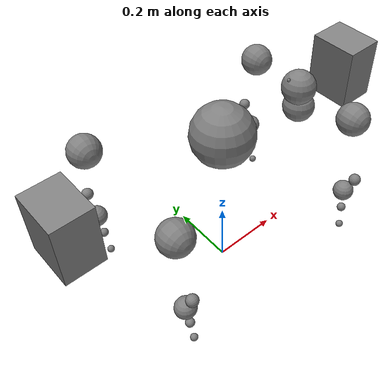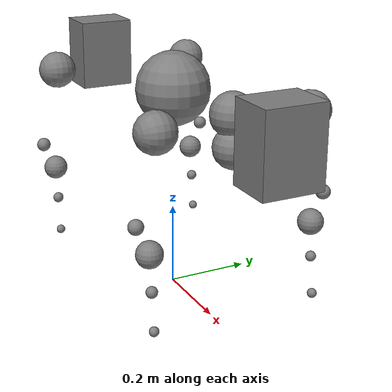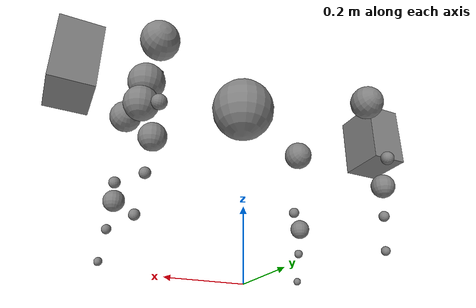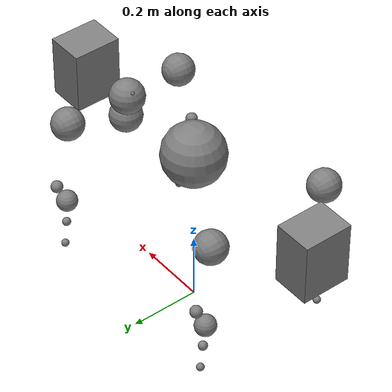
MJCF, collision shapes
<?xml version="1.0" encoding="utf-8"?>
<mujoco model="anymal">
  <compiler angle="radian" meshdir="assets" autolimits="true"/>

  <option cone="pyramidal" impratio="100" iterations="1" ls_iterations="5">
    <flag eulerdamp="disable"/>
  </option>

  <default>
    <default class="anymal">
      <geom friction="0.8" margin="0.001" condim="1"/>
      <joint axis="0 1 0" damping="2" armature="0.01"/>
      <general forcerange="-80 80" biastype="affine" gainprm="50 0 0" biasprm="0 -50 -0.5"/>

      <default class="haa">
        <joint axis="1 0 0"/>
      </default>

      <default class="hfe">
        <joint axis="1 0 0" range="-9.42477796077 9.42477796077"/>
        <general ctrlrange="-9.32477796077 9.32477796077"/>
      </default>

      <default class="kfe">
        <joint axis="1 0 0" range="-9.42477796077 9.42477796077"/>
        <general ctrlrange="-9.32477796077 9.32477796077"/>
      </default>

      <default class="visual">
        <geom type="mesh" contype="0" conaffinity="0" group="2"/>
      </default>

      <default class="anymal_foot">
        <site group="1" pos="0 0 0.0225"/>
        <geom rgba="0.2 0.2 0.2 1"/>
      </default>

      <default class="collision">
        <geom group="3"/>
        <default class="foot">
          <geom size="0.03" pos="0 0 0.0225" priority="1" solimp="0.015 1 0.031" condim="6"
            friction="0.8 0.02 0.01"/>
        </default>
      </default>
    </default>
  </default>

  <asset>
    <material name="metal" rgba="0.7 0.7 0.75 1"/>
    <material name="black" rgba="0.1 0.1 0.1 1"/>
    <material name="gray" rgba="0.5 0.5 0.5 1"/>
    <material name="dark_gray" rgba="0.3 0.3 0.3 1"/>
    <material name="orange" rgba="1 0.5 0 1"/>

    <!-- Mesh files -->
    <mesh file="base.dae"/>
    <mesh file="top_shell.dae"/>
    <mesh file="bottom_shell.dae"/>
    <mesh file="remote.dae"/>
    <mesh file="handle.dae"/>
    <mesh file="face.dae"/>
    <mesh file="battery.dae"/>
    <mesh file="drive.dae"/>
    <mesh file="hip_l.dae"/>
    <mesh file="hip_r.dae"/>
    <mesh file="thigh.dae"/>
    <mesh file="shank_l.dae"/>
    <mesh file="shank_r.dae"/>
    <mesh file="foot.dae"/>
    <mesh file="depth_camera.dae"/>
    <mesh file="wide_angle_camera.dae"/>
    <mesh file="lidar_cage.dae"/>
    <mesh file="lidar.dae"/>
  </asset>

  <worldbody>
    <body name="base" pos="0 0 0.5" childclass="anymal">
      <camera name="track" pos="1.2 -2.0 1.0" xyaxes="0.866 0.500 0.000 -0.171 0.296 0.940" mode="trackcom"/>

      <!-- Combined base inertia -->
      <inertial pos="-0.018 -0.002 0.024" mass="6.222"
                diaginertia="0.372497653 0.370887745 0.017938806"/>

      <freejoint/>

      <!-- Base visual -->
      <geom mesh="base" material="gray" class="visual"/>
      <geom mesh="top_shell" material="gray" class="visual"/>
      <geom mesh="bottom_shell" material="gray" class="visual"/>
      <geom mesh="remote" material="black" class="visual"/>
      <geom mesh="handle" material="metal" class="visual"/>
      <geom mesh="battery" material="black" class="visual"/>

      <!-- Base collision - simplified -->
      <geom size="0.09 0.07 0.09" class="collision"/>
      <geom size="0.05 0.045" pos="0.285 0 0.01" class="collision"/>
      <geom size="0.047" pos="0.293 0 -0.06" class="collision"/>

      <!-- IMU sensor location -->
      <site name="imu" pos="0.2488 0.00835 0.04628" quat="0.707107 0 0 0.707107"/>

      <!-- Front faces -->
      <body name="face_front" pos="0.4145 0 0">
        <inertial pos="0.042 -0.001 0.004" mass="0.73"
                  diaginertia="0.005238611 0.004325938 0.002643098"/>
        <geom mesh="face" material="gray" class="visual"/>
        <geom size="0.055 0.07 0.09" type="box" pos="0.055 0 0" class="collision"/>
      </body>

      <body name="face_rear" pos="-0.4145 0 0" quat="0 0 1 0">
        <inertial pos="0.042 -0.001 0.004" mass="0.73"
                  diaginertia="0.005238611 0.004325938 0.002643098"/>
        <geom mesh="face" material="gray" class="visual"/>
        <geom size="0.055 0.07 0.09" type="box" pos="0.055 0 0" class="collision"/>
      </body>

      <!-- LF Leg (Left Front) -->
      <body name="LF_hip" pos="0.2999 0.104 0">
        <inertial pos="-0.063 0.00007 0.00046" mass="2.04"
                  diaginertia="0.001805509 0.001765827 0.001053013"/>
        <joint name="LF_hip_joint" class="haa" range="-0.72 0.49"/>
        <geom mesh="drive" material="metal" class="visual" euler="0 0 2.61799387799"/>
        <geom size="0.046 0.02" pos="0 0.08 0" quat="1 1 0 0" class="collision"/>

        <body name="LF_thigh" pos="0 0.0955 0">
          <inertial pos="0.0 0.018 -0.169" mass="1.03"
                    diaginertia="0.019312599 0.018644469 0.002838361"/>
          <joint name="LF_thigh_joint" class="hfe"/>
          <geom mesh="hip_l" material="gray" class="visual"/>
          <geom mesh="thigh" material="gray" class="visual"/>
          <geom size="0.017 0.01225 0.017" pos="0 0.03 -0.1955" quat="0.707107 0 0.707107 0" class="collision"/>

          <body name="LF_calf" pos="0 0 -0.285">
            <inertial pos="0.03463 0.00688 0.00098" mass="0.33742"
                      diaginertia="0.00110974122 0.00089388521 0.00032748005"/>
            <joint name="LF_calf_joint" class="kfe"/>
            <geom mesh="drive" material="metal" class="visual" euler="0 0 1.57079632679"/>
            <geom mesh="shank_l" material="gray" class="visual"/>
            <geom size="0.012 0.06" pos="0.008 0 -0.06" quat="0.994493 0 -0.104807 0" class="collision"/>
            <geom size="0.011 0.0325" pos="0.02 0 -0.148" quat="0.999688 0 0.0249974 0" class="collision"/>
            <geom pos="0 0 -0.213" mesh="foot" class="visual" material="black" euler="0 0 -0.785398163397"/>
            <geom name="LF" class="foot"/>
            <site name="LF_foot" class="anymal_foot"/>
          </body>
        </body>
      </body>

      <!-- RF Leg (Right Front) -->
      <body name="RF_hip" pos="0.2999 -0.104 0">
        <inertial pos="-0.063 0.00007 0.00046" mass="2.04"
                  diaginertia="0.001805509 0.001765827 0.001053013"/>
        <joint name="RF_hip_joint" class="haa" range="-0.49 0.72"/>
        <geom mesh="drive" material="metal" class="visual" euler="0 0 -2.61799387799"/>
        <geom size="0.046 0.02" pos="0 -0.08 0" quat="0.707107 0.707107 0 0" class="collision"/>

        <body name="FR_thigh" pos="0 -0.0955 0">
          <inertial pos="0.0 -0.018 -0.169" mass="1.03"
                    diaginertia="0.019312599 0.018644469 0.002838361"/>
          <joint name="FR_thigh_joint" class="hfe"/>
          <geom mesh="hip_r" material="gray" class="visual"/>
          <geom mesh="thigh" material="gray" class="visual" quat="0 0 0 1"/>
          <geom size="0.017 0.01225 0.017" pos="0 -0.03 -0.1955" quat="0.707107 0 0.707107 0" class="collision"/>

          <body name="FR_calf" pos="0 0 -0.285">
            <inertial pos="0.03463 -0.00688 0.00098" mass="0.33742"
                      diaginertia="0.00110974122 0.00089388521 0.00032748005"/>
            <joint name="FR_calf_joint" class="kfe"/>
            <geom mesh="drive" material="metal" class="visual" euler="0 0 -1.57079632679"/>
            <geom mesh="shank_r" material="gray" class="visual"/>
            <geom size="0.013 0.06" pos="0.01 0 -0.06" quat="0.995004 0 -0.0998334 0" class="collision"/>
            <geom size="0.011 0.0325" pos="0.02 0 -0.148" quat="0.999688 0 0.0249974 0" class="collision"/>
            <geom pos="0 0 -0.213" mesh="foot" class="visual" material="black" euler="0 0 0.785398163397"/>
            <geom name="FR" class="foot"/>
            <site name="FR_foot" class="anymal_foot"/>
          </body>
        </body>
      </body>

      <!-- LH Leg (Left Hind) -->
      <body name="LH_hip" pos="-0.2999 0.104 0">
        <inertial pos="-0.063 0.00007 0.00046" mass="2.04"
                  diaginertia="0.001805509 0.001765827 0.001053013"/>
        <joint name="LH_hip_joint" class="haa" range="-0.72 0.49"/>
        <geom mesh="drive" material="metal" class="visual" euler="0 0 -2.61799387799"/>
        <geom size="0.046 0.02" pos="0 0.08 0" quat="0.707107 0.707107 0 0" class="collision"/>

        <body name="RL_thigh" pos="0 0.0955 0">
          <inertial pos="-0.0 0.018 -0.169" mass="1.03"
                    diaginertia="0.019312599 0.018644469 0.002838361"/>
          <joint name="RL_thigh_joint" class="hfe"/>
          <geom mesh="hip_r" material="gray" class="visual" quat="0 0 0 1"/>
          <geom mesh="thigh" material="gray" class="visual"/>
          <geom size="0.017 0.01225 0.017" pos="0 0.03 -0.1955" quat="0.707107 0 0.707107 0" class="collision"/>

          <body name="RL_calf" pos="0 0 -0.285">
            <inertial pos="-0.03463 0.00688 0.00098" mass="0.33742"
                      diaginertia="0.00110974122 0.00089388521 0.00032748005"/>
            <joint name="RL_calf_joint" class="kfe"/>
            <geom mesh="drive" material="metal" class="visual" euler="0 0 1.57079632679"/>
            <geom mesh="shank_r" material="gray" class="visual" quat="0 0 0 1"/>
            <geom size="0.013 0.06" pos="0.01 0 -0.06" quat="0.995004 0 -0.0998334 0" class="collision"/>
            <geom size="0.011 0.0325" pos="0.02 0 -0.148" quat="0.999688 0 0.0249974 0" class="collision"/>
            <geom pos="0 0 -0.213" mesh="foot" class="visual" material="black" euler="0 0 -2.35619449019"/>
            <geom name="RL" class="foot"/>
            <site name="RL_foot" class="anymal_foot"/>
          </body>
        </body>
      </body>

      <!-- RH Leg (Right Hind) -->
      <body name="RH_hip" pos="-0.2999 -0.104 0">
        <inertial pos="-0.063 0.00007 0.00046" mass="2.04"
                  diaginertia="0.001805509 0.001765827 0.001053013"/>
        <joint name="RH_hip_joint" class="haa" range="-0.49 0.72"/>
        <geom mesh="drive" material="metal" class="visual" euler="0 0 2.61799387799"/>
        <geom size="0.046 0.02" pos="0 -0.08 0" quat="0.707107 0.707107 0 0" class="collision"/>

        <body name="RR_thigh" pos="0 -0.0955 0">
          <inertial pos="-0.0 -0.018 -0.169" mass="1.03"
                    diaginertia="0.019312599 0.018644469 0.002838361"/>
          <joint name="RR_thigh_joint" class="hfe"/>
          <geom mesh="hip_l" material="gray" class="visual" quat="0 0 0 1"/>
          <geom mesh="thigh" material="gray" class="visual" quat="0 0 0 1"/>
          <geom size="0.017 0.01225 0.017" pos="0 -0.03 -0.1955" quat="0.707107 0 0.707107 0" class="collision"/>

          <body name="RR_calf" pos="0 0 -0.285">
            <inertial pos="-0.03463 -0.00688 0.00098" mass="0.33742"
                      diaginertia="0.00110974122 0.00089388521 0.00032748005"/>
            <joint name="RR_calf_joint" class="kfe"/>
            <geom mesh="drive" material="metal" class="visual" euler="0 0 -1.57079632679"/>
            <geom mesh="shank_l" material="gray" class="visual" quat="0 0 0 1"/>
            <geom size="0.013 0.06" pos="0.01 0 -0.06" quat="0.995004 0 -0.0998334 0" class="collision"/>
            <geom size="0.011 0.0325" pos="0.02 0 -0.148" quat="0.999688 0 0.0249974 0" class="collision"/>
            <geom pos="0 0 -0.213" mesh="foot" class="visual" material="black" euler="0 0 -3.92699081699"/>
            <geom name="RR" class="foot"/>
            <site name="RR_foot" class="anymal_foot"/>
          </body>
        </body>
      </body>

    </body>
  </worldbody>

  <actuator>
    <!-- LF leg actuators -->
    <general class="haa" name="LF_hip" joint="LF_hip_joint" ctrlrange="-0.62 0.39"/>
    <general class="hfe" name="LF_thigh" joint="LF_thigh_joint"/>
    <general class="kfe" name="LF_calf" joint="LF_calf_joint"/>

    <!-- RF leg actuators -->
    <general class="haa" name="RF_hip" joint="RF_hip_joint" ctrlrange="-0.39 0.62"/>
    <general class="hfe" name="FR_thigh" joint="FR_thigh_joint"/>
    <general class="kfe" name="FR_calf" joint="FR_calf_joint"/>

    <!-- LH leg actuators -->
    <general class="haa" name="LH_hip" joint="LH_hip_joint" ctrlrange="-0.62 0.39"/>
    <general class="hfe" name="RL_thigh" joint="RL_thigh_joint"/>
    <general class="kfe" name="RL_calf" joint="RL_calf_joint"/>

    <!-- RH leg actuators -->
    <general class="haa" name="RH_hip" joint="RH_hip_joint" ctrlrange="-0.39 0.62"/>
    <general class="hfe" name="RR_thigh" joint="RR_thigh_joint"/>
    <general class="kfe" name="RR_calf" joint="RR_calf_joint"/>
  </actuator>

  <sensor>
    <jointpos joint="LF_hip_joint" name="abduction_front_left_pos"/>
    <jointpos joint="LF_thigh_joint" name="hip_front_left_pos"/>
    <jointpos joint="LF_calf_joint" name="knee_front_left_pos"/>
    <jointpos joint="LH_hip_joint" name="abduction_hind_left_pos"/>
    <jointpos joint="RL_thigh_joint" name="hip_hind_left_pos"/>
    <jointpos joint="RL_calf_joint" name="knee_hind_left_pos"/>
    <jointpos joint="RF_hip_joint" name="abduction_front_right_pos"/>
    <jointpos joint="FR_thigh_joint" name="hip_front_right_pos"/>
    <jointpos joint="FR_calf_joint" name="knee_front_right_pos"/>
    <jointpos joint="RH_hip_joint" name="abduction_hind_right_pos"/>
    <jointpos joint="RR_thigh_joint" name="hip_hind_right_pos"/>
    <jointpos joint="RR_calf_joint" name="knee_hind_right_pos"/>

    <jointvel joint="LF_hip_joint" name="abduction_front_left_vel"/>
    <jointvel joint="LF_thigh_joint" name="hip_front_left_vel"/>
    <jointvel joint="LF_calf_joint" name="knee_front_left_vel"/>
    <jointvel joint="LH_hip_joint" name="abduction_hind_left_vel"/>
    <jointvel joint="RL_thigh_joint" name="hip_hind_left_vel"/>
    <jointvel joint="RL_calf_joint" name="knee_hind_left_vel"/>
    <jointvel joint="RF_hip_joint" name="abduction_front_right_vel"/>
    <jointvel joint="FR_thigh_joint" name="hip_front_right_vel"/>
    <jointvel joint="FR_calf_joint" name="knee_front_right_vel"/>
    <jointvel joint="RH_hip_joint" name="abduction_hind_right_vel"/>
    <jointvel joint="RR_thigh_joint" name="hip_hind_right_vel"/>
    <jointvel joint="RR_calf_joint" name="knee_hind_right_vel"/>

    <gyro site="imu" name="gyro"/>
    <accelerometer site="imu" name="accelerometer"/>
    <framequat objtype="site" objname="imu" name="orientation"/>
    <framepos objtype="site" objname="imu" name="global_position"/>
    <framelinvel objtype="site" objname="imu" name="global_linvel"/>
    <frameangvel objtype="site" objname="imu" name="global_angvel"/>
  </sensor>

  <keyframe>
    <key name="home"
         qpos="0 0 0.5 1 0 0 0
               0 0.8 -1.6 0 0.8 -1.6
               0 0.8 -1.6 0 0.8 -1.6"
         ctrl="0 0.8 -1.6 0 0.8 -1.6
               0 0.8 -1.6 0 0.8 -1.6"/>
  </keyframe>
</mujoco>
